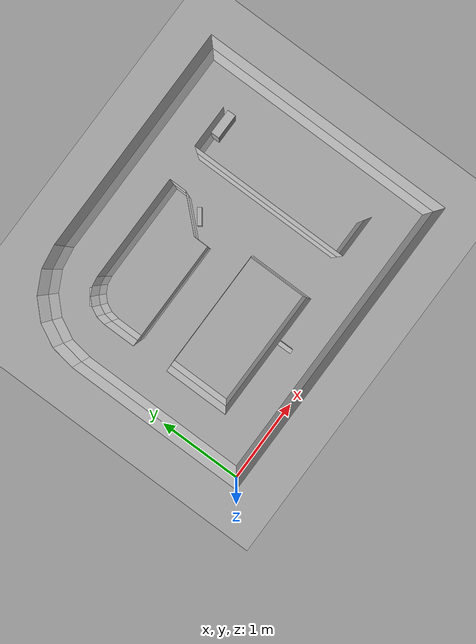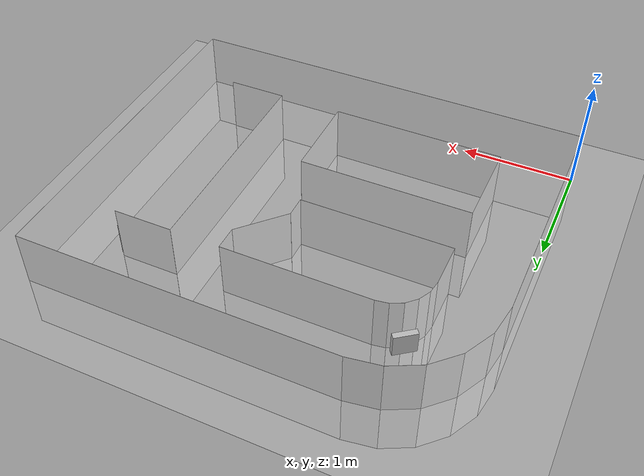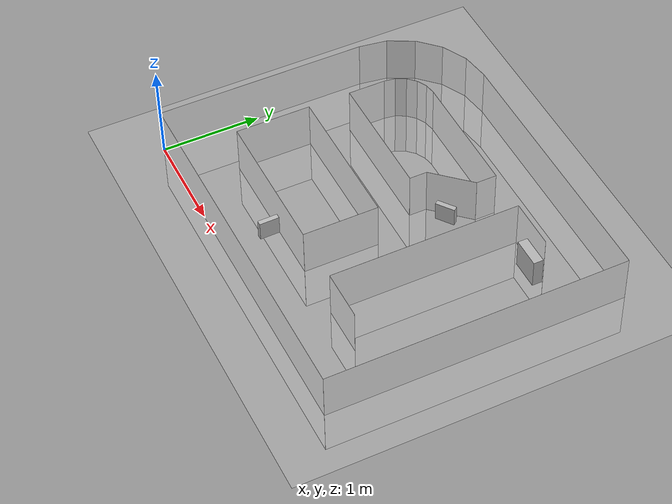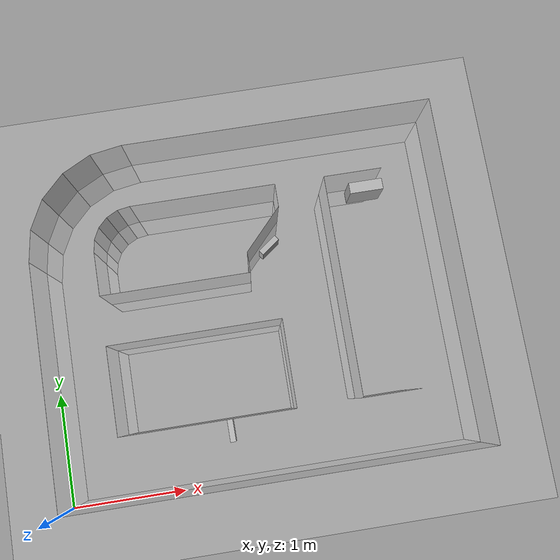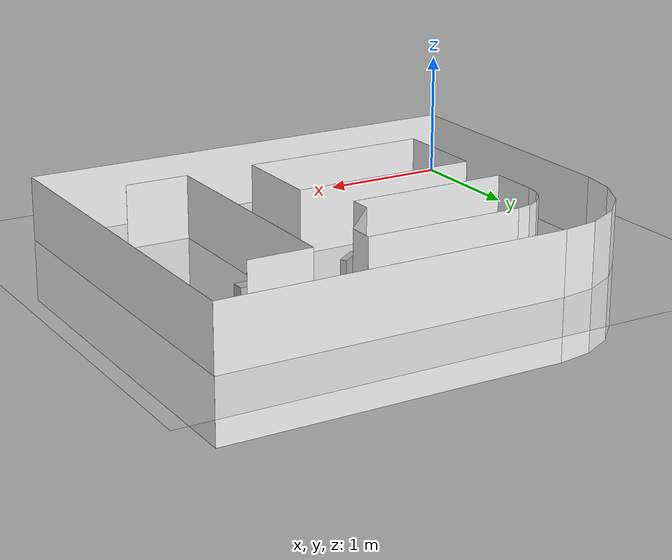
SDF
<sdf version="1.6">
 <world name="default">
  <light name="sun" type="directional">
   <pose>0 0 10 0 -0 0</pose>
   <diffuse>0.8 0.8 0.8 1</diffuse>
   <specular>0.1 0.1 0.1 1</specular>
   <attenuation>
    <range>1000</range>
    <constant>0.9</constant>
    <linear>0.01</linear>
    <quadratic>0.001</quadratic>
   </attenuation>
   <direction>-0.5 0.5 -1</direction>
  </light>
  <model name="ground_plane">
   <static>1</static>
   <link name="link">
    <collision name="collision">
     <geometry><plane><normal>0 0 1</normal><size>100 100</size></plane></geometry>
     <surface><friction><ode><mu>100</mu><mu2>50</mu2></ode></friction></surface>
    </collision>
    <visual name="visual">
     <cast_shadows>0</cast_shadows>
     <geometry><plane><normal>0 0 1</normal><size>100 100</size></plane></geometry>
     <material>
      <script><uri>file://media/materials/scripts/gazebo.material</uri><name>Gazebo/Grey</name></script>
     </material>
    </visual>
   </link>
  </model>
  <model name="wall_0">
   <static>1</static>
   <link name="link">
    <collision name="collision"><geometry><box><size>2.1336 0.001 1</size></box></geometry></collision>
    <visual name="visual">
     <geometry><box><size>2.1336 0.001 1</size></box></geometry>
     <material>
      <script><name>Gazebo/White</name><uri>file://media/materials/scripts/gazebo.material</uri></script>
     </material>
    </visual>
   </link>
   <pose>0 1.0668 0 0 -0 1.5708</pose>
  </model>
  <model name="wall_1">
   <static>1</static>
   <link name="link">
    <collision name="collision"><geometry><box><size>0.286088 0.001 1</size></box></geometry></collision>
    <visual name="visual">
     <geometry><box><size>0.286088 0.001 1</size></box></geometry>
     <material>
      <script><name>Gazebo/White</name><uri>file://media/materials/scripts/gazebo.material</uri></script>
     </material>
    </visual>
   </link>
   <pose>0.022377 2.27489 0 0 -0 1.41372</pose>
  </model>
  <model name="wall_2">
   <static>1</static>
   <link name="link">
    <collision name="collision"><geometry><box><size>0.286088 0.001 1</size></box></geometry></collision>
    <visual name="visual">
     <geometry><box><size>0.286088 0.001 1</size></box></geometry>
     <material>
      <script><name>Gazebo/White</name><uri>file://media/materials/scripts/gazebo.material</uri></script>
     </material>
    </visual>
   </link>
   <pose>0.109695 2.54362 0 0 -0 1.09956</pose>
  </model>
  <model name="wall_3">
   <static>1</static>
   <link name="link">
    <collision name="collision"><geometry><box><size>0.286088 0.001 1</size></box></geometry></collision>
    <visual name="visual">
     <geometry><box><size>0.286088 0.001 1</size></box></geometry>
     <material>
      <script><name>Gazebo/White</name><uri>file://media/materials/scripts/gazebo.material</uri></script>
     </material>
    </visual>
   </link>
   <pose>0.275783 2.77222 0 0 -0 0.785398</pose>
  </model>
  <model name="wall_4">
   <static>1</static>
   <link name="link">
    <collision name="collision"><geometry><box><size>0.286088 0.001 1</size></box></geometry></collision>
    <visual name="visual">
     <geometry><box><size>0.286088 0.001 1</size></box></geometry>
     <material>
      <script><name>Gazebo/White</name><uri>file://media/materials/scripts/gazebo.material</uri></script>
     </material>
    </visual>
   </link>
   <pose>0.504383 2.93831 0 0 -0 0.471239</pose>
  </model>
  <model name="wall_5">
   <static>1</static>
   <link name="link">
    <collision name="collision"><geometry><box><size>0.286088 0.001 1</size></box></geometry></collision>
    <visual name="visual">
     <geometry><box><size>0.286088 0.001 1</size></box></geometry>
     <material>
      <script><name>Gazebo/White</name><uri>file://media/materials/scripts/gazebo.material</uri></script>
     </material>
    </visual>
   </link>
   <pose>0.773119 3.02563 0 0 -0 0.15708</pose>
  </model>
  <model name="wall_6">
   <static>1</static>
   <link name="link">
    <collision name="collision"><geometry><box><size>2.74321 0.001 1</size></box></geometry></collision>
    <visual name="visual">
     <geometry><box><size>2.74321 0.001 1</size></box></geometry>
     <material>
      <script><name>Gazebo/White</name><uri>file://media/materials/scripts/gazebo.material</uri></script>
     </material>
    </visual>
   </link>
   <pose>2.286 3.04801 0 0 -0 0</pose>
  </model>
  <model name="wall_7">
   <static>1</static>
   <link name="link">
    <collision name="collision"><geometry><box><size>3.04801 0.001 1</size></box></geometry></collision>
    <visual name="visual">
     <geometry><box><size>3.04801 0.001 1</size></box></geometry>
     <material>
      <script><name>Gazebo/White</name><uri>file://media/materials/scripts/gazebo.material</uri></script>
     </material>
    </visual>
   </link>
   <pose>3.65761 1.524 0 0 0 -1.5708</pose>
  </model>
  <model name="wall_8">
   <static>1</static>
   <link name="link">
    <collision name="collision"><geometry><box><size>3.65761 0.001 1</size></box></geometry></collision>
    <visual name="visual">
     <geometry><box><size>3.65761 0.001 1</size></box></geometry>
     <material>
      <script><name>Gazebo/White</name><uri>file://media/materials/scripts/gazebo.material</uri></script>
     </material>
    </visual>
   </link>
   <pose>1.8288 0 0 0 0 -3.14159</pose>
  </model>
  <model name="wall_9">
   <static>1</static>
   <link name="link">
    <collision name="collision"><geometry><box><size>0.762002 0.001 1</size></box></geometry></collision>
    <visual name="visual">
     <geometry><box><size>0.762002 0.001 1</size></box></geometry>
     <material>
      <script><name>Gazebo/White</name><uri>file://media/materials/scripts/gazebo.material</uri></script>
     </material>
    </visual>
   </link>
   <pose>0.558801 0.939802 0 0 -0 1.5708</pose>
  </model>
  <model name="wall_10">
   <static>1</static>
   <link name="link">
    <collision name="collision"><geometry><box><size>1.4986 0.001 1</size></box></geometry></collision>
    <visual name="visual">
     <geometry><box><size>1.4986 0.001 1</size></box></geometry>
     <material>
      <script><name>Gazebo/White</name><uri>file://media/materials/scripts/gazebo.material</uri></script>
     </material>
    </visual>
   </link>
   <pose>1.3081 1.3208 0 0 -0 0</pose>
  </model>
  <model name="wall_11">
   <static>1</static>
   <link name="link">
    <collision name="collision"><geometry><box><size>0.762002 0.001 1</size></box></geometry></collision>
    <visual name="visual">
     <geometry><box><size>0.762002 0.001 1</size></box></geometry>
     <material>
      <script><name>Gazebo/White</name><uri>file://media/materials/scripts/gazebo.material</uri></script>
     </material>
    </visual>
   </link>
   <pose>2.0574 0.939802 0 0 0 -1.5708</pose>
  </model>
  <model name="wall_12">
   <static>1</static>
   <link name="link">
    <collision name="collision"><geometry><box><size>1.4986 0.001 1</size></box></geometry></collision>
    <visual name="visual">
     <geometry><box><size>1.4986 0.001 1</size></box></geometry>
     <material>
      <script><name>Gazebo/White</name><uri>file://media/materials/scripts/gazebo.material</uri></script>
     </material>
    </visual>
   </link>
   <pose>1.3081 0.558801 0 0 0 -3.14159</pose>
  </model>
  <model name="wall_13">
   <static>1</static>
   <link name="link">
    <collision name="collision"><geometry><box><size>0.381001 0.001 1</size></box></geometry></collision>
    <visual name="visual">
     <geometry><box><size>0.381001 0.001 1</size></box></geometry>
     <material>
      <script><name>Gazebo/White</name><uri>file://media/materials/scripts/gazebo.material</uri></script>
     </material>
    </visual>
   </link>
   <pose>0.558801 1.9431 0 0 -0 1.5708</pose>
  </model>
  <model name="wall_14">
   <static>1</static>
   <link name="link">
    <collision name="collision"><geometry><box><size>0.111256 0.001 1</size></box></geometry></collision>
    <visual name="visual">
     <geometry><box><size>0.111256 0.001 1</size></box></geometry>
     <material>
      <script><name>Gazebo/White</name><uri>file://media/materials/scripts/gazebo.material</uri></script>
     </material>
    </visual>
   </link>
   <pose>0.567503 2.18855 0 0 -0 1.41372</pose>
  </model>
  <model name="wall_15">
   <static>1</static>
   <link name="link">
    <collision name="collision"><geometry><box><size>0.111256 0.001 1</size></box></geometry></collision>
    <visual name="visual">
     <geometry><box><size>0.111256 0.001 1</size></box></geometry>
     <material>
      <script><name>Gazebo/White</name><uri>file://media/materials/scripts/gazebo.material</uri></script>
     </material>
    </visual>
   </link>
   <pose>0.60146 2.29306 0 0 -0 1.09956</pose>
  </model>
  <model name="wall_16">
   <static>1</static>
   <link name="link">
    <collision name="collision"><geometry><box><size>0.111256 0.001 1</size></box></geometry></collision>
    <visual name="visual">
     <geometry><box><size>0.111256 0.001 1</size></box></geometry>
     <material>
      <script><name>Gazebo/White</name><uri>file://media/materials/scripts/gazebo.material</uri></script>
     </material>
    </visual>
   </link>
   <pose>0.66605 2.38196 0 0 -0 0.785398</pose>
  </model>
  <model name="wall_17">
   <static>1</static>
   <link name="link">
    <collision name="collision"><geometry><box><size>0.111256 0.001 1</size></box></geometry></collision>
    <visual name="visual">
     <geometry><box><size>0.111256 0.001 1</size></box></geometry>
     <material>
      <script><name>Gazebo/White</name><uri>file://media/materials/scripts/gazebo.material</uri></script>
     </material>
    </visual>
   </link>
   <pose>0.75495 2.44655 0 0 -0 0.471239</pose>
  </model>
  <model name="wall_18">
   <static>1</static>
   <link name="link">
    <collision name="collision"><geometry><box><size>0.111256 0.001 1</size></box></geometry></collision>
    <visual name="visual">
     <geometry><box><size>0.111256 0.001 1</size></box></geometry>
     <material>
      <script><name>Gazebo/White</name><uri>file://media/materials/scripts/gazebo.material</uri></script>
     </material>
    </visual>
   </link>
   <pose>0.859458 2.4805 0 0 -0 0.15708</pose>
  </model>
  <model name="wall_19">
   <static>1</static>
   <link name="link">
    <collision name="collision"><geometry><box><size>1.27 0.001 1</size></box></geometry></collision>
    <visual name="visual">
     <geometry><box><size>1.27 0.001 1</size></box></geometry>
     <material>
      <script><name>Gazebo/White</name><uri>file://media/materials/scripts/gazebo.material</uri></script>
     </material>
    </visual>
   </link>
   <pose>1.5494 2.48921 0 0 -0 0</pose>
  </model>
  <model name="wall_20">
   <static>1</static>
   <link name="link">
    <collision name="collision"><geometry><box><size>0.2032 0.001 1</size></box></geometry></collision>
    <visual name="visual">
     <geometry><box><size>0.2032 0.001 1</size></box></geometry>
     <material>
      <script><name>Gazebo/White</name><uri>file://media/materials/scripts/gazebo.material</uri></script>
     </material>
    </visual>
   </link>
   <pose>2.1844 2.38761 0 0 0 -1.5708</pose>
  </model>
  <model name="wall_21">
   <static>1</static>
   <link name="link">
    <collision name="collision"><geometry><box><size>0.485267 0.001 1</size></box></geometry></collision>
    <visual name="visual">
     <geometry><box><size>0.485267 0.001 1</size></box></geometry>
     <material>
      <script><name>Gazebo/White</name><uri>file://media/materials/scripts/gazebo.material</uri></script>
     </material>
    </visual>
   </link>
   <pose>2.0193 2.1082 0 0 0 -2.31917</pose>
  </model>
  <model name="wall_22">
   <static>1</static>
   <link name="link">
    <collision name="collision"><geometry><box><size>0.1778 0.001 1</size></box></geometry></collision>
    <visual name="visual">
     <geometry><box><size>0.1778 0.001 1</size></box></geometry>
     <material>
      <script><name>Gazebo/White</name><uri>file://media/materials/scripts/gazebo.material</uri></script>
     </material>
    </visual>
   </link>
   <pose>1.8542 1.8415 0 0 0 -1.5708</pose>
  </model>
  <model name="wall_23">
   <static>1</static>
   <link name="link">
    <collision name="collision"><geometry><box><size>1.2954 0.001 1</size></box></geometry></collision>
    <visual name="visual">
     <geometry><box><size>1.2954 0.001 1</size></box></geometry>
     <material>
      <script><name>Gazebo/White</name><uri>file://media/materials/scripts/gazebo.material</uri></script>
     </material>
    </visual>
   </link>
   <pose>1.2065 1.7526 0 0 0 -3.14159</pose>
  </model>
  <model name="wall_24">
   <static>1</static>
   <link name="link">
    <collision name="collision"><geometry><box><size>0.508001 0.001 1</size></box></geometry></collision>
    <visual name="visual">
     <geometry><box><size>0.508001 0.001 1</size></box></geometry>
     <material>
      <script><name>Gazebo/White</name><uri>file://media/materials/scripts/gazebo.material</uri></script>
     </material>
    </visual>
   </link>
   <pose>2.87021 2.48921 0 0 -0 0</pose>
  </model>
  <model name="wall_25">
   <static>1</static>
   <link name="link">
    <collision name="collision"><geometry><box><size>0.508001 0.001 1</size></box></geometry></collision>
    <visual name="visual">
     <geometry><box><size>0.508001 0.001 1</size></box></geometry>
     <material>
      <script><name>Gazebo/White</name><uri>file://media/materials/scripts/gazebo.material</uri></script>
     </material>
    </visual>
   </link>
   <pose>2.87021 0.558801 0 0 0 -3.14159</pose>
  </model>
  <model name="wall_26">
   <static>1</static>
   <link name="link">
    <collision name="collision"><geometry><box><size>1.9304 0.001 1</size></box></geometry></collision>
    <visual name="visual">
     <geometry><box><size>1.9304 0.001 1</size></box></geometry>
     <material>
      <script><name>Gazebo/White</name><uri>file://media/materials/scripts/gazebo.material</uri></script>
     </material>
    </visual>
   </link>
   <pose>2.6162 1.524 0 0 -0 1.5708</pose>
  </model>
  <gravity>0 0 -9.8</gravity>
  <magnetic_field>6e-06 2.3e-05 -4.2e-05</magnetic_field>
  <atmosphere type="adiabatic"/>
  <physics name="default_physics" default="0" type="ode">
   <max_step_size>0.001</max_step_size>
   <real_time_factor>1</real_time_factor>
   <real_time_update_rate>1000</real_time_update_rate>
  </physics>
  <scene><ambient>0.4 0.4 0.4 1</ambient><background>0.7 0.7 0.7 1</background><shadows>1</shadows></scene>
  <spherical_coordinates>
   <surface_model>EARTH_WGS84</surface_model>
   <latitude_deg>0</latitude_deg>
   <longitude_deg>0</longitude_deg>
   <elevation>0</elevation>
   <heading_deg>0</heading_deg>
  </spherical_coordinates>
  <model name="Pizza">
   <link name="link">
    <inertial>
     <mass>1</mass>
     <inertia>
      <ixx>0.166667</ixx>
      <ixy>0</ixy>
      <ixz>0</ixz>
      <iyy>0.166667</iyy>
      <iyz>0</iyz>
      <izz>0.166667</izz>
     </inertia>
    </inertial>
    <visual name="visual">
     <geometry><box><size>0.2 0.05 0.2</size></box></geometry>
     <material>
      <script>
       <uri>model://Pizza/materials/scripts</uri>
       <uri>model://Pizza/materials/textures</uri>
       <name>vrc/Pizza</name>
      </script>
      <shader type="pixel"/>
      <ambient>0.3 0.3 0.3 1</ambient>
      <diffuse>0.7 0.7 0.7 1</diffuse>
      <specular>0.01 0.01 0.01 1</specular>
      <emissive>0 0 0 1</emissive>
     </material>
    </visual>
    <collision name="collision">
     <geometry><box><size>0.2 0.05 0.2</size></box></geometry>
     <surface>
      <friction>
       <ode><mu>1</mu><mu2>1</mu2><fdir1>0 0 0</fdir1><slip1>0</slip1><slip2>0</slip2></ode>
       <torsional>
        <coefficient>1</coefficient>
        <patch_radius>0</patch_radius>
        <surface_radius>0</surface_radius>
        <use_patch_radius>1</use_patch_radius>
        <ode><slip>0</slip></ode>
       </torsional>
      </friction>
      <bounce><restitution_coefficient>0</restitution_coefficient><threshold>1e+06</threshold></bounce>
      <contact>
       <collide_without_contact>0</collide_without_contact>
       <collide_without_contact_bitmask>1</collide_without_contact_bitmask>
       <collide_bitmask>1</collide_bitmask>
       <ode>
        <soft_cfm>0</soft_cfm>
        <soft_erp>0.2</soft_erp>
        <kp>1e+13</kp>
        <kd>1</kd>
        <max_vel>0.01</max_vel>
        <min_depth>0</min_depth>
       </ode>
       <bullet>
        <split_impulse>1</split_impulse>
        <split_impulse_penetration_threshold>-0.01</split_impulse_penetration_threshold>
        <soft_cfm>0</soft_cfm>
        <soft_erp>0.2</soft_erp>
        <kp>1e+13</kp>
        <kd>1</kd>
       </bullet>
      </contact>
     </surface>
    </collision>
   </link>
   <static>0</static>
   <pose>2.06478 2.03139 0.100001 1.4e-05 -3e-06 0.640326</pose>
  </model>
  <model name="Apple">
   <pose>1.48098 0.457999 0.1 4e-06 -0 -1.55882</pose>
   <link name="link">
    <inertial>
     <mass>1</mass>
     <inertia>
      <ixx>0.166667</ixx>
      <ixy>0</ixy>
      <ixz>0</ixz>
      <iyy>0.166667</iyy>
      <iyz>0</iyz>
      <izz>0.166667</izz>
     </inertia>
    </inertial>
    <collision name="collision"><geometry><box><size>0.2 0.05 0.2</size></box></geometry></collision>
    <visual name="visual">
     <geometry><box><size>0.2 0.05 0.2</size></box></geometry>
     <material>
      <script>
       <uri>model://Apple/materials/scripts</uri>
       <uri>model://Apple/materials/textures</uri>
       <name>vrc/Apple</name>
      </script>
     </material>
    </visual>
   </link>
  </model>
  <model name="Cake">
   <pose>0.672165 2.44484 0.1 1e-06 -0 0.652976</pose>
   <link name="link">
    <inertial>
     <mass>1</mass>
     <inertia>
      <ixx>0.166667</ixx>
      <ixy>0</ixy>
      <ixz>0</ixz>
      <iyy>0.166667</iyy>
      <iyz>0</iyz>
      <izz>0.166667</izz>
     </inertia>
    </inertial>
    <collision name="collision"><geometry><box><size>0.2 0.05 0.2</size></box></geometry></collision>
    <visual name="visual">
     <geometry><box><size>0.2 0.05 0.2</size></box></geometry>
     <material>
      <script>
       <uri>model://Cake/materials/scripts</uri>
       <uri>model://Cake/materials/textures</uri>
       <name>vrc/Cake</name>
      </script>
     </material>
    </visual>
   </link>
  </model>
  <model name="Apple_0">
   <link name="link">
    <inertial>
     <mass>1</mass>
     <inertia>
      <ixx>0.166667</ixx>
      <ixy>0</ixy>
      <ixz>0</ixz>
      <iyy>0.166667</iyy>
      <iyz>0</iyz>
      <izz>0.166667</izz>
     </inertia>
    </inertial>
    <visual name="visual">
     <geometry><box><size>0.3 0.1 0.3</size></box></geometry>
     <material>
      <script>
       <name>vrc/Apple</name>
       <uri>model://Apple/materials/scripts</uri>
       <uri>model://Apple/materials/textures</uri>
      </script>
      <shader type="pixel"/>
      <ambient>0.3 0.3 0.3 1</ambient>
      <diffuse>0.7 0.7 0.7 1</diffuse>
      <specular>0.01 0.01 0.01 1</specular>
      <emissive>0 0 0 1</emissive>
     </material>
    </visual>
    <collision name="collision">
     <geometry><box><size>0.3 0.1 0.3</size></box></geometry>
     <surface>
      <friction>
       <ode><mu>1</mu><mu2>1</mu2><fdir1>0 0 0</fdir1><slip1>0</slip1><slip2>0</slip2></ode>
       <torsional>
        <coefficient>1</coefficient>
        <patch_radius>0</patch_radius>
        <surface_radius>0</surface_radius>
        <use_patch_radius>1</use_patch_radius>
        <ode><slip>0</slip></ode>
       </torsional>
      </friction>
      <bounce><restitution_coefficient>0</restitution_coefficient><threshold>1e+06</threshold></bounce>
      <contact>
       <collide_without_contact>0</collide_without_contact>
       <collide_without_contact_bitmask>1</collide_without_contact_bitmask>
       <collide_bitmask>1</collide_bitmask>
       <ode>
        <soft_cfm>0</soft_cfm>
        <soft_erp>0.2</soft_erp>
        <kp>1e+13</kp>
        <kd>1</kd>
        <max_vel>0.01</max_vel>
        <min_depth>0</min_depth>
       </ode>
       <bullet>
        <split_impulse>1</split_impulse>
        <split_impulse_penetration_threshold>-0.01</split_impulse_penetration_threshold>
        <soft_cfm>0</soft_cfm>
        <soft_erp>0.2</soft_erp>
        <kp>1e+13</kp>
        <kd>1</kd>
       </bullet>
      </contact>
     </surface>
    </collision>
   </link>
   <static>0</static>
   <pose>3.00617 2.40922 0.149998 0 2e-06 0</pose>
  </model>
 </world>
</sdf>
